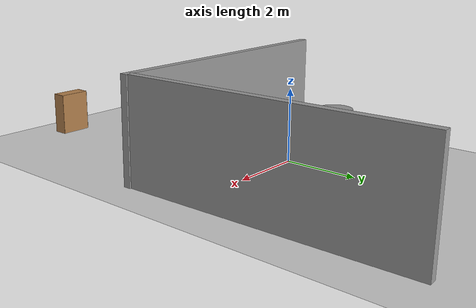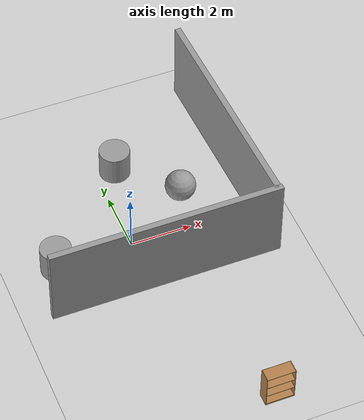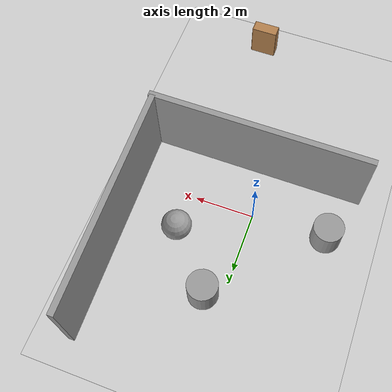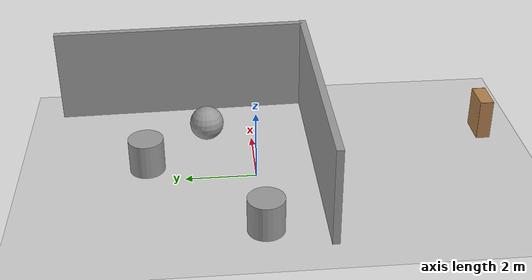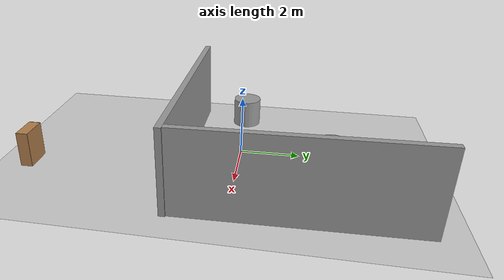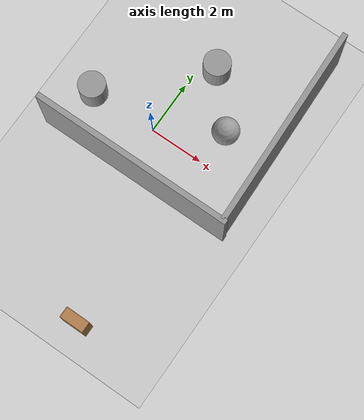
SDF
<sdf version="1.7">
 <world name="indoor_world">
  <light name="sun" type="directional">
   <pose>0 0 10 0 -0 0</pose>
   <diffuse>0.8 0.8 0.8 1</diffuse>
   <specular>0.2 0.2 0.2 1</specular>
   <attenuation>
    <range>1000</range>
    <constant>0.9</constant>
    <linear>0.01</linear>
    <quadratic>0.001</quadratic>
   </attenuation>
   <direction>-0.5 0.1 -0.9</direction>
   <spot><inner_angle>0</inner_angle><outer_angle>0</outer_angle><falloff>0</falloff></spot>
  </light>
  <model name="ground_plane">
   <static>1</static>
   <link name="link">
    <collision name="collision">
     <geometry><plane><normal>0 0 1</normal><size>100 100</size></plane></geometry>
     <surface>
      <contact><collide_bitmask>65535</collide_bitmask></contact>
      <friction><ode><mu>100</mu><mu2>50</mu2></ode></friction>
     </surface>
    </collision>
    <visual name="visual">
     <cast_shadows>0</cast_shadows>
     <geometry><plane><normal>0 0 1</normal><size>100 100</size></plane></geometry>
     <material>
      <script><uri>file://media/materials/scripts/gazebo.material</uri><name>Gazebo/Grey</name></script>
     </material>
    </visual>
   </link>
  </model>
  <gravity>0 0 -9.8</gravity>
  <magnetic_field>6e-06 2.3e-05 -4.2e-05</magnetic_field>
  <atmosphere type="adiabatic"/>
  <physics type="ode">
   <max_step_size>0.001</max_step_size>
   <real_time_factor>1</real_time_factor>
   <real_time_update_rate>1000</real_time_update_rate>
  </physics>
  <scene><ambient>0.4 0.4 0.4 1</ambient><background>0.7 0.7 0.7 1</background><shadows>1</shadows></scene>
  <audio><device>default</device></audio>
  <spherical_coordinates>
   <surface_model>EARTH_WGS84</surface_model>
   <latitude_deg>0</latitude_deg>
   <longitude_deg>0</longitude_deg>
   <elevation>0</elevation>
   <heading_deg>0</heading_deg>
  </spherical_coordinates>
  <model name="grey_wall">
   <static>1</static>
   <link name="link">
    <pose>0 0 1.4 0 -0 0</pose>
    <collision name="collision"><geometry><box><size>7.5 0.2 2.8</size></box></geometry></collision>
    <visual name="visual">
     <cast_shadows>0</cast_shadows>
     <geometry><box><size>7.5 0.2 2.8</size></box></geometry>
     <material>
      <script>
       <uri>model://grey_wall/materials/scripts</uri>
       <uri>model://grey_wall/materials/textures</uri>
       <name>vrc/grey_wall</name>
      </script>
     </material>
    </visual>
   </link>
   <pose>0.5 -1.77276 0 0 -0 0</pose>
  </model>
  <model name="grey_wall_0">
   <static>1</static>
   <link name="link">
    <pose>0 0 1.4 0 -0 0</pose>
    <collision name="collision"><geometry><box><size>7.5 0.2 2.8</size></box></geometry></collision>
    <visual name="visual">
     <cast_shadows>0</cast_shadows>
     <geometry><box><size>7.5 0.2 2.8</size></box></geometry>
     <material>
      <script>
       <uri>model://grey_wall/materials/scripts</uri>
       <uri>model://grey_wall/materials/textures</uri>
       <name>vrc/grey_wall</name>
      </script>
     </material>
    </visual>
   </link>
   <pose>4 2 0 0 -0 1.6</pose>
  </model>
  <model name="bookshelf">
   <static>1</static>
   <link name="link">
    <inertial><mass>1</mass></inertial>
    <collision name="back">
     <pose>0 0.005 0.6 0 -0 0</pose>
     <geometry><box><size>0.9 0.01 1.2</size></box></geometry>
    </collision>
    <visual name="visual1">
     <pose>0 0.005 0.6 0 -0 0</pose>
     <geometry><box><size>0.9 0.01 1.2</size></box></geometry>
     <material>
      <script><uri>file://media/materials/scripts/gazebo.material</uri><name>Gazebo/Wood</name></script>
     </material>
    </visual>
    <collision name="left_side">
     <pose>0.45 -0.195 0.6 0 -0 0</pose>
     <geometry><box><size>0.02 0.4 1.2</size></box></geometry>
    </collision>
    <visual name="visual2">
     <pose>0.45 -0.195 0.6 0 -0 0</pose>
     <geometry><box><size>0.02 0.4 1.2</size></box></geometry>
     <material>
      <script><uri>file://media/materials/scripts/gazebo.material</uri><name>Gazebo/Wood</name></script>
     </material>
    </visual>
    <collision name="right_side">
     <pose>-0.45 -0.195 0.6 0 -0 0</pose>
     <geometry><box><size>0.02 0.4 1.2</size></box></geometry>
    </collision>
    <visual name="visual3">
     <pose>-0.45 -0.195 0.6 0 -0 0</pose>
     <geometry><box><size>0.02 0.4 1.2</size></box></geometry>
     <material>
      <script><uri>file://media/materials/scripts/gazebo.material</uri><name>Gazebo/Wood</name></script>
     </material>
    </visual>
    <collision name="bottom">
     <pose>0 -0.195 0.03 0 -0 0</pose>
     <geometry><box><size>0.88 0.4 0.06</size></box></geometry>
    </collision>
    <visual name="visual4">
     <pose>0 -0.195 0.03 0 -0 0</pose>
     <geometry><box><size>0.88 0.4 0.06</size></box></geometry>
     <material>
      <script><uri>file://media/materials/scripts/gazebo.material</uri><name>Gazebo/Wood</name></script>
     </material>
    </visual>
    <collision name="top">
     <pose>0 -0.195 1.19 0 -0 0</pose>
     <geometry><box><size>0.88 0.4 0.02</size></box></geometry>
    </collision>
    <visual name="visual5">
     <pose>0 -0.195 1.19 0 -0 0</pose>
     <geometry><box><size>0.88 0.4 0.02</size></box></geometry>
     <material>
      <script><uri>file://media/materials/scripts/gazebo.material</uri><name>Gazebo/Wood</name></script>
     </material>
    </visual>
    <collision name="low_shelf">
     <pose>0 -0.195 0.43 0 -0 0</pose>
     <geometry><box><size>0.88 0.4 0.02</size></box></geometry>
    </collision>
    <visual name="visual6">
     <pose>0 -0.195 0.43 0 -0 0</pose>
     <geometry><box><size>0.88 0.4 0.02</size></box></geometry>
     <material>
      <script><uri>file://media/materials/scripts/gazebo.material</uri><name>Gazebo/Wood</name></script>
     </material>
    </visual>
    <collision name="high_shelf">
     <pose>0 -0.195 0.8 0 -0 0</pose>
     <geometry><box><size>0.88 0.4 0.02</size></box></geometry>
    </collision>
    <visual name="visual7">
     <pose>0 -0.195 0.8 0 -0 0</pose>
     <geometry><box><size>0.88 0.4 0.02</size></box></geometry>
     <material>
      <script><uri>file://media/materials/scripts/gazebo.material</uri><name>Gazebo/Wood</name></script>
     </material>
    </visual>
   </link>
   <pose>1.863 -6.76305 0 0 -0 0</pose>
  </model>
  <model name="unit_cylinder_0">
   <pose>0.624788 3.05241 0.499997 3e-06 3e-06 0</pose>
   <link name="link">
    <inertial>
     <mass>1</mass>
     <inertia><ixx>0.145833</ixx><ixy>0</ixy><ixz>0</ixz><iyy>0.145833</iyy><iyz>0</iyz><izz>0.125</izz></inertia>
    </inertial>
    <collision name="collision">
     <geometry><cylinder><radius>0.5</radius><length>1</length></cylinder></geometry>
    </collision>
    <visual name="visual">
     <geometry><cylinder><radius>0.5</radius><length>1</length></cylinder></geometry>
     <material>
      <script><name>Gazebo/Grey</name><uri>file://media/materials/scripts/gazebo.material</uri></script>
     </material>
    </visual>
   </link>
  </model>
  <model name="unit_cylinder">
   <pose>-2.4905 -0.069453 0.499993 -3e-06 -4e-06 -0</pose>
   <link name="link">
    <inertial>
     <mass>1</mass>
     <inertia><ixx>0.145833</ixx><ixy>0</ixy><ixz>0</ixz><iyy>0.145833</iyy><iyz>0</iyz><izz>0.125</izz></inertia>
    </inertial>
    <collision name="collision">
     <geometry><cylinder><radius>0.5</radius><length>1</length></cylinder></geometry>
    </collision>
    <visual name="visual">
     <geometry><cylinder><radius>0.5</radius><length>1</length></cylinder></geometry>
     <material>
      <script><name>Gazebo/Grey</name><uri>file://media/materials/scripts/gazebo.material</uri></script>
     </material>
    </visual>
   </link>
  </model>
  <model name="unit_sphere">
   <pose>2.19422 1.31204 0.5 0 -0 0</pose>
   <link name="link">
    <inertial>
     <mass>1</mass>
     <inertia><ixx>0.1</ixx><ixy>0</ixy><ixz>0</ixz><iyy>0.1</iyy><iyz>0</iyz><izz>0.1</izz></inertia>
    </inertial>
    <collision name="collision"><geometry><sphere><radius>0.5</radius></sphere></geometry></collision>
    <visual name="visual">
     <geometry><sphere><radius>0.5</radius></sphere></geometry>
     <material>
      <script><name>Gazebo/Grey</name><uri>file://media/materials/scripts/gazebo.material</uri></script>
     </material>
    </visual>
   </link>
  </model>
 </world>
</sdf>
